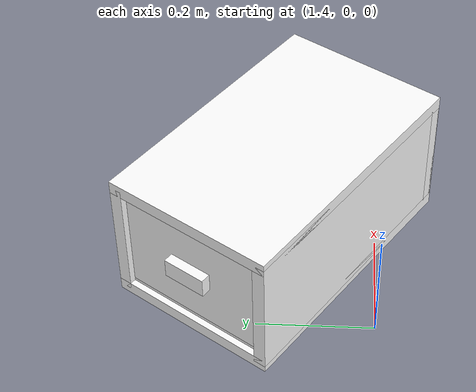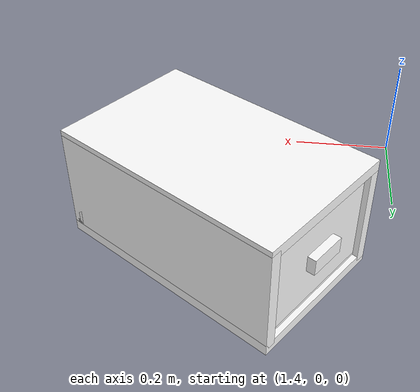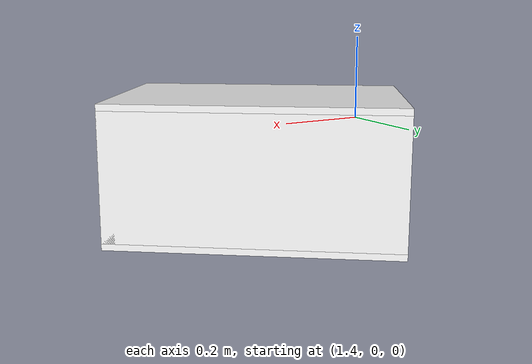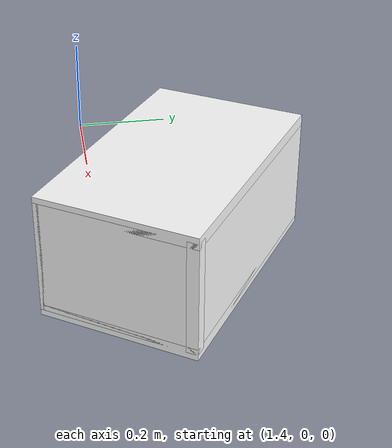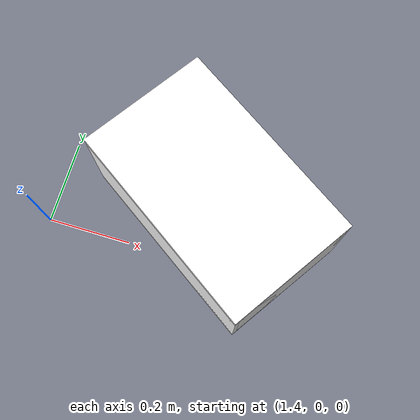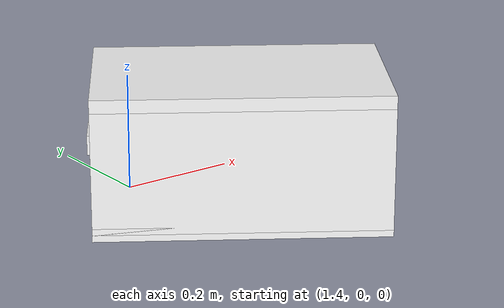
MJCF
<mujoco model="drawer">
        <compiler angle="radian" eulerseq='zxy' />
        <option gravity = "0 0 0" />
        <option>
            <flag contact = "disable"/>
        </option>
        <statistic	extent="1.0" center="0.0 0.0 0.0"/>
        <visual>
            <map fogstart="3" fogend="5" force="0.1" znear=" 0.100000 " zfar=" 12.000000 "/>
        </visual>
        <size njmax="500" nconmax="100" />
        <actuator>
            <velocity joint="drawerJ" name="viva_revolution" kv='10'></velocity>
        </actuator>
        <asset>
            <texture builtin="flat" name="objtex" height="32" width="32" rgb1="1 1 1" type="cube"></texture>
            <texture builtin="flat" name="handletex" height="32" width="32" rgb1="1 1 1" type="cube"></texture>
            <material name="geomObj" shininess="0.03" specular="0.75" texture="objtex"></material>
            <material name="geomHandle" shininess="0.03" specular="0.75" texture="handletex"></material>
        </asset>
        <worldbody>
            <body name="cabinet_bottom" pos= " 1.764232 0.175632 -0.159761 "  quat= " 0.291932 0.000000 0.000000 0.956439" >
                <inertial pos="0 0 0" mass="1" diaginertia="1 1 1" />
                <geom size= " 0.277790 0.172451 0.012689 "  type="box" material="geomObj" name="b"/>
                <body name="cabinet_left" pos= " 0.000000 -0.159762 0.123599 " >
                    <inertial pos="0 0 0" mass="1" diaginertia="1 1 1" />
                    <geom size= " 0.277790 0.012689 0.123599 "  type="box" material="geomObj" name="c" />
                </body>
                <body name="cabinet_right" pos= " 0.000000 0.159762 0.123599 " >
                    <inertial pos="0 0 0" mass="1" diaginertia="1 1 1" />
                    <geom size= " 0.277790 0.012689 0.123599 "  type="box" material="geomObj" name="d" />
                </body>
                <body name="cabinet_top" pos= " 0.000000 0.000000 0.247197 " >
                    <inertial pos="0 0 0" mass="1" diaginertia="1 1 1" />
                    <geom size= " 0.277790 0.172451 0.012689 "  type="box" material="geomObj" name="e"/>
                </body>
                <body name="cabinet_back" pos= " -0.265101 0.000000 0.123599 "  >
                    <inertial pos="0 0 0" mass="1" diaginertia="1 1 1" />
                    <geom size= " 0.012689 0.172451 0.123599 "  type="box" material="geomObj" name="f" />
                </body>
                <body name="drawer" pos= " 0.000000 0.000000 0.006344 "  >
                    <geom size= " 0.265101 0.159762 0.012689 "  type="box" material="geomObj" name="ddddfadfadsfac" />
                    <joint name="drawerJ" pos="0 0 0" axis="1 0 0" type="slide" limited="true" range= "0  0.4166850596666336 "  />
                    <inertial pos="0 0 0" mass="1" diaginertia="1 1 1" />
                    <body name="drawer_left" pos= " 0.000000 -0.147074 0.123599 " >
                        <inertial pos="0 0 0" mass="1" diaginertia="1 1 1" />
                        <geom size= " 0.265101 0.012689 0.110910 "  type="box" material="geomObj" name="ddc" />
                    </body>
                    <body name="drawer_right" pos= " 0.000000 0.147074 0.123599 " >
                        <inertial pos="0 0 0" mass="1" diaginertia="1 1 1" />
                        <geom size= " 0.265101 0.012689 0.110910 "  type="box" material="geomObj" name="dddd" />
                    </body>
                    <body name="drawer_front" pos= " 0.252413 0.000000 0.123599 " >
                        <inertial pos="0 0 0" mass="1" diaginertia="1 1 1" />
                        <geom size= " 0.012689 0.159762 0.110910 "  type="box" material="geomObj" name="eeeee"/>
                    </body>
                    <body name="drawer_back" pos= " -0.265101 0.000000 0.123599 "  >
                        <inertial pos="0 0 0" mass="1" diaginertia="1 1 1" />
                        <geom size= " 0.012689 0.159762 0.110910 "  type="box" material="geomObj" name="fffff" />
                    </body>
                    <body name="knob" pos= " 0.277790 0.000000 0.123599 " >
                        <inertial pos="0 0 0" mass="0.1" diaginertia="0.1 0.1 0.1" />
                        <geom size= " 0.009877 0.043025 0.018996 "  pos="0 0 0" type="box" material="geomHandle" name="handle"/>
                    </body>
                </body>
            </body>
            <body name="external_camera_body_0" pos="0.0 0 0.00">
                <camera euler="-1.57 1.57 0.0" fovy=" 54.280851 " name="external_camera_0" pos="0.0 0 0"></camera>
                <inertial pos= " 0.00 0.0 0.000000 " mass="1" diaginertia="1 1 1" />
                <joint name="cam_j" pos="0.0 0 0" axis = "1 0 0" type="free" />
            </body>
        </worldbody>
    </mujoco>
